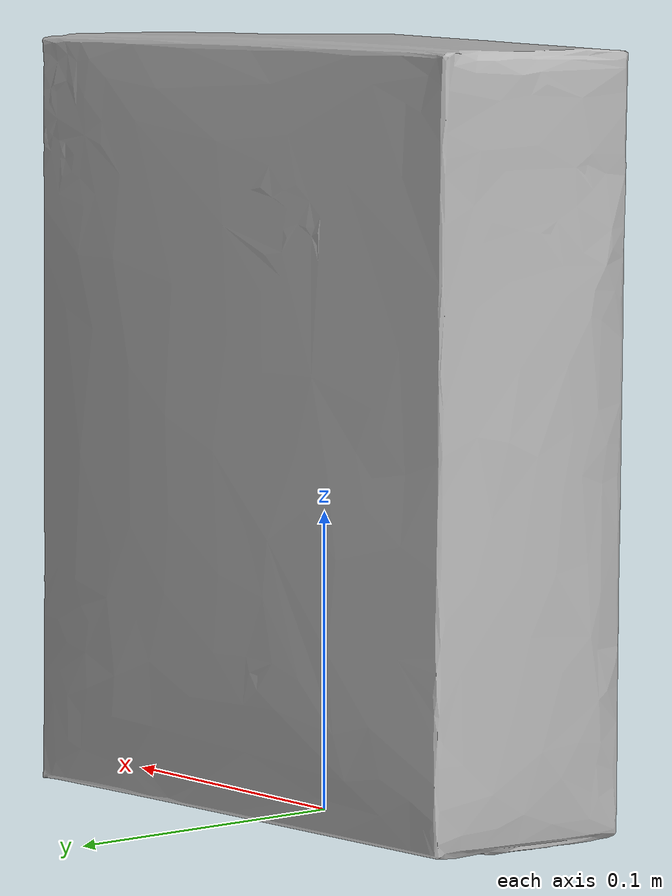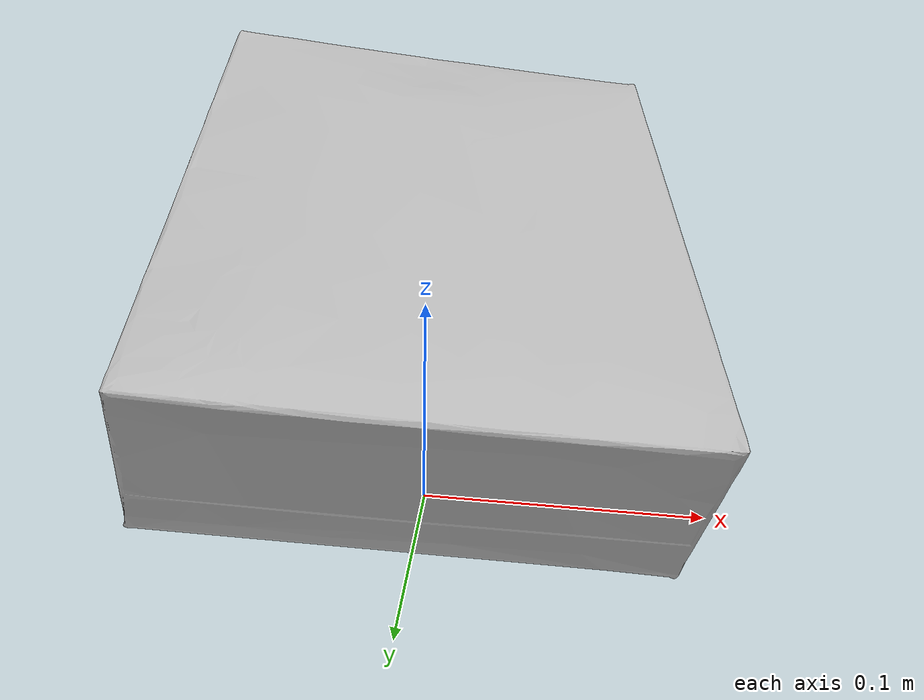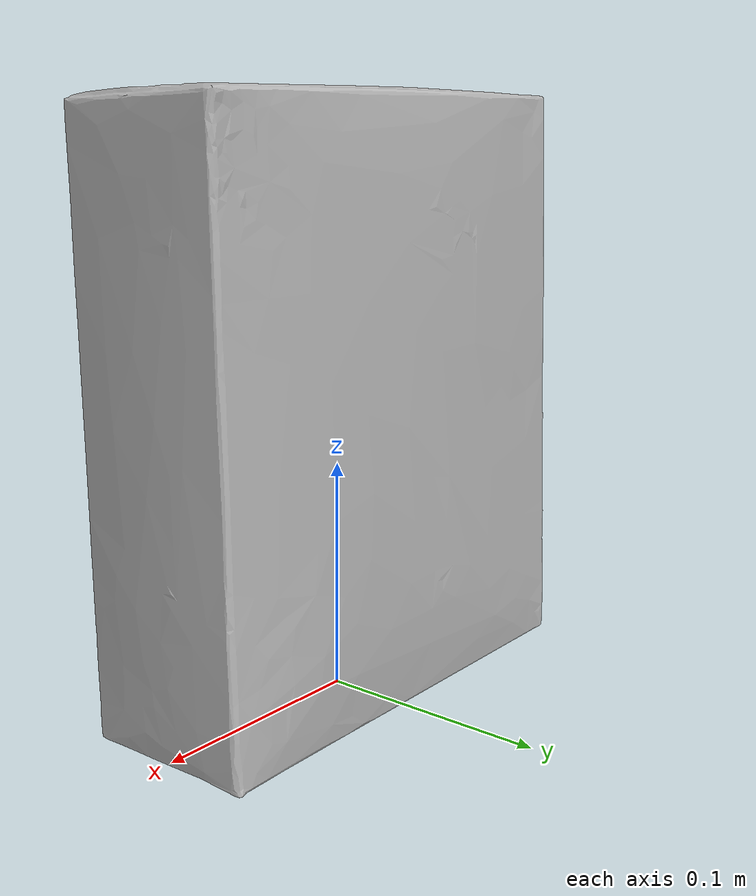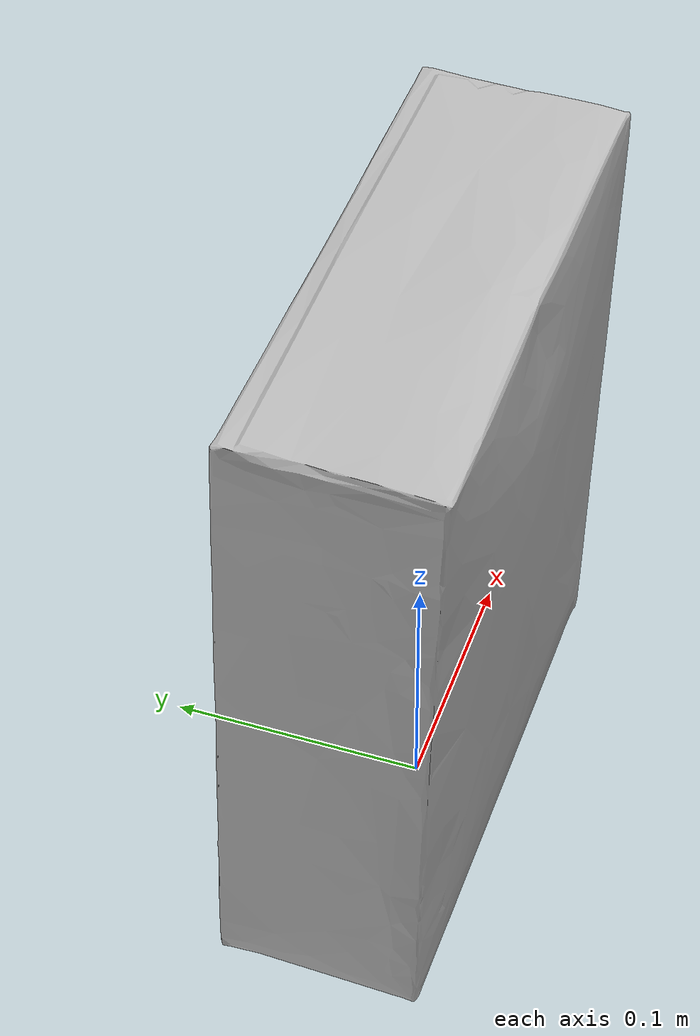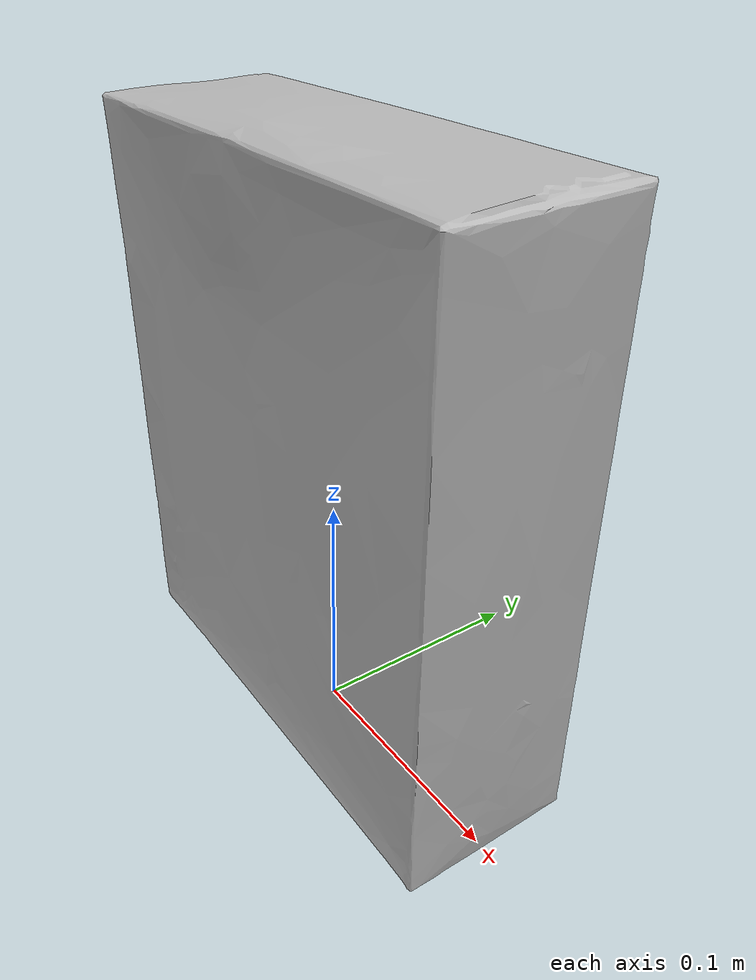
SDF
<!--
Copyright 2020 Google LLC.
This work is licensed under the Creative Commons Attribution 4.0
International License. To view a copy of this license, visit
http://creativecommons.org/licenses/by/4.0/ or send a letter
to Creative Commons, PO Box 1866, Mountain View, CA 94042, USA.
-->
<?xml version="1.0" ?>
<sdf version="1.6">
  <model name="Black_Forest_Fruit_Snacks_28_Pack_Grape">
    <link name="link_0">
      <visual name="visual">
        <geometry>
          <mesh>
            <uri>meshes/model.obj</uri>
          </mesh>
        </geometry>
      </visual>
      <collision name="collision_0">
        <geometry>
          <mesh>
            <uri>meshes/model.obj</uri>
          </mesh>
        </geometry>
      </collision>
    </link>
  </model>
</sdf>
